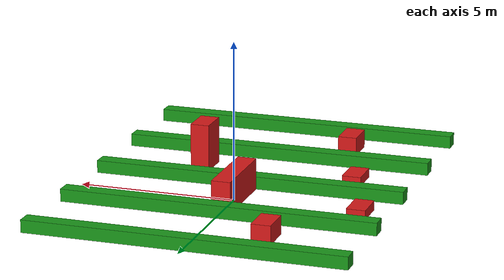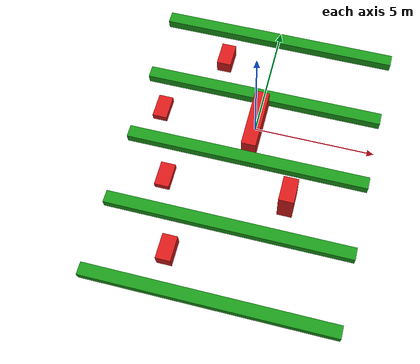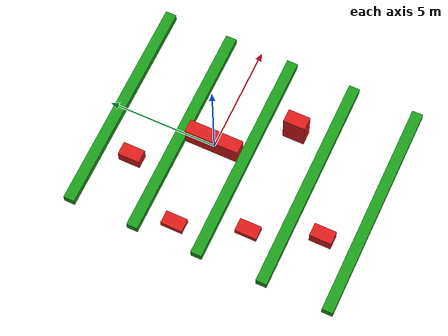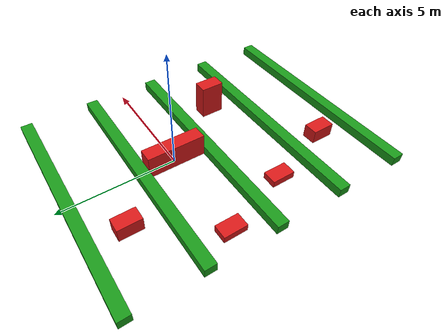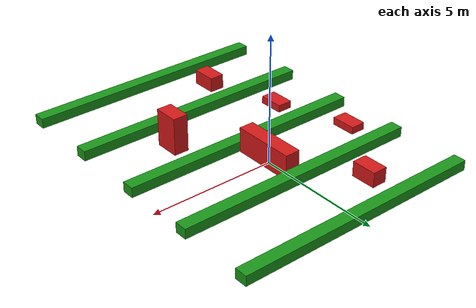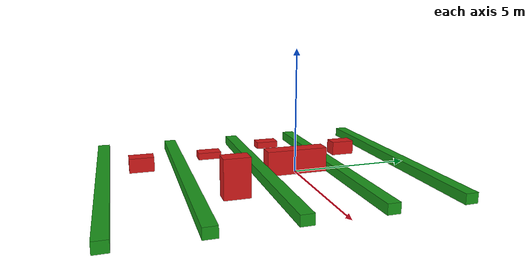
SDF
<sdf version="1.9">
 <world name="demo_field">
  <physics type="ode">
   <max_step_size>0.004</max_step_size>
   <real_time_factor>1.0</real_time_factor>
   <real_time_update_rate>250</real_time_update_rate>
  </physics>
  <plugin filename="gz-sim-physics-system" name="gz::sim::systems::Physics"/>
  <plugin filename="gz-sim-user-commands-system" name="gz::sim::systems::UserCommands"/>
  <plugin filename="gz-sim-scene-broadcaster-system" name="gz::sim::systems::SceneBroadcaster"/>
  <plugin filename="gz-sim-sensors-system" name="gz::sim::systems::Sensors">
   <render_engine>ogre2</render_engine>
  </plugin>
  <plugin filename="gz-sim-imu-system" name="gz::sim::systems::Imu"/>
  <plugin filename="gz-sim-navsat-system" name="gz::sim::systems::NavSat"/>
  <plugin filename="gz-sim-air-pressure-system" name="gz::sim::systems::AirPressure"/>
  <plugin filename="gz-sim-magnetometer-system" name="gz::sim::systems::Magnetometer"/>
  <scene>
   <grid>false</grid>
   <ambient>0.4 0.4 0.4 1</ambient>
   <background>0.7 0.8 1.0 1</background>
   <sky><clouds><speed>12</speed></clouds></sky>
  </scene>
  <light type="directional" name="sun">
   <pose>0 0 10 0 0 0</pose>
   <diffuse>0.8 0.8 0.8 1</diffuse>
   <specular>0.2 0.2 0.2 1</specular>
   <attenuation>
    <range>1000</range>
    <constant>0.9</constant>
    <linear>0.01</linear>
    <quadratic>0.001</quadratic>
   </attenuation>
   <direction>-0.5 0.1 -0.9</direction>
  </light>
  <gravity>0 0 -9.8</gravity>
  <magnetic_field>6e-06 2.3e-05 -4.2e-05</magnetic_field>
  <atmosphere type="adiabatic"/>
  <model name="row_1">
   <static>true</static>
   <pose>0 -7.5 0.2 0 0 0</pose>
   <link name="link">
    <visual name="visual">
     <geometry><box><size>10 0.5 0.4</size></box></geometry>
     <material>
      <ambient>0.05 0.30 0.05 1</ambient>
      <diffuse>0.10 0.60 0.10 1</diffuse>
      <specular>0.05 0.10 0.05 1</specular>
     </material>
    </visual>
    <collision name="collision"><geometry><box><size>10 0.5 0.4</size></box></geometry></collision>
   </link>
  </model>
  <model name="row_2">
   <static>true</static>
   <pose>0 -4.5 0.2 0 0 0</pose>
   <link name="link">
    <visual name="visual">
     <geometry><box><size>10 0.5 0.4</size></box></geometry>
     <material>
      <ambient>0.05 0.30 0.05 1</ambient>
      <diffuse>0.10 0.60 0.10 1</diffuse>
      <specular>0.05 0.10 0.05 1</specular>
     </material>
    </visual>
    <collision name="collision"><geometry><box><size>10 0.5 0.4</size></box></geometry></collision>
   </link>
  </model>
  <model name="row_3">
   <static>true</static>
   <pose>0 -1.5 0.2 0 0 0</pose>
   <link name="link">
    <visual name="visual">
     <geometry><box><size>10 0.5 0.4</size></box></geometry>
     <material>
      <ambient>0.05 0.30 0.05 1</ambient>
      <diffuse>0.10 0.60 0.10 1</diffuse>
      <specular>0.05 0.10 0.05 1</specular>
     </material>
    </visual>
    <collision name="collision"><geometry><box><size>10 0.5 0.4</size></box></geometry></collision>
   </link>
  </model>
  <model name="row_4">
   <static>true</static>
   <pose>0 1.5 0.2 0 0 0</pose>
   <link name="link">
    <visual name="visual">
     <geometry><box><size>10 0.5 0.4</size></box></geometry>
     <material>
      <ambient>0.05 0.30 0.05 1</ambient>
      <diffuse>0.10 0.60 0.10 1</diffuse>
      <specular>0.05 0.10 0.05 1</specular>
     </material>
    </visual>
    <collision name="collision"><geometry><box><size>10 0.5 0.4</size></box></geometry></collision>
   </link>
  </model>
  <model name="row_5">
   <static>true</static>
   <pose>0 4.5 0.2 0 0 0</pose>
   <link name="link">
    <visual name="visual">
     <geometry><box><size>10 0.5 0.4</size></box></geometry>
     <material>
      <ambient>0.05 0.30 0.05 1</ambient>
      <diffuse>0.10 0.60 0.10 1</diffuse>
      <specular>0.05 0.10 0.05 1</specular>
     </material>
    </visual>
    <collision name="collision"><geometry><box><size>10 0.5 0.4</size></box></geometry></collision>
   </link>
  </model>
  <model name="obs_south_med">
   <static>true</static>
   <pose>-2 -6 0.30 0 0 0</pose>
   <link name="link">
    <visual name="visual">
     <geometry><box><size>0.6 1.0 0.6</size></box></geometry>
     <material>
      <ambient>0.40 0.05 0.05 1</ambient>
      <diffuse>0.85 0.10 0.10 1</diffuse>
      <specular>0.20 0.05 0.05 1</specular>
     </material>
    </visual>
    <collision name="collision"><geometry><box><size>0.6 1.0 0.6</size></box></geometry></collision>
   </link>
  </model>
  <model name="obs_c2_low">
   <static>true</static>
   <pose>-3 -3 0.15 0 0 0</pose>
   <link name="link">
    <visual name="visual">
     <geometry><box><size>0.6 1.0 0.3</size></box></geometry>
     <material>
      <ambient>0.40 0.05 0.05 1</ambient>
      <diffuse>0.85 0.10 0.10 1</diffuse>
      <specular>0.20 0.05 0.05 1</specular>
     </material>
    </visual>
    <collision name="collision"><geometry><box><size>0.6 1.0 0.3</size></box></geometry></collision>
   </link>
  </model>
  <model name="obs_c2_tall">
   <static>true</static>
   <pose>2 -3 0.75 0 0 0</pose>
   <link name="link">
    <visual name="visual">
     <geometry><box><size>0.6 1.0 1.5</size></box></geometry>
     <material>
      <ambient>0.40 0.05 0.05 1</ambient>
      <diffuse>0.85 0.10 0.10 1</diffuse>
      <specular>0.20 0.05 0.05 1</specular>
     </material>
    </visual>
    <collision name="collision"><geometry><box><size>0.6 1.0 1.5</size></box></geometry></collision>
   </link>
  </model>
  <model name="obs_central_low">
   <static>true</static>
   <pose>-4 0 0.15 0 0 0</pose>
   <link name="link">
    <visual name="visual">
     <geometry><box><size>0.6 1.0 0.3</size></box></geometry>
     <material>
      <ambient>0.40 0.05 0.05 1</ambient>
      <diffuse>0.85 0.10 0.10 1</diffuse>
      <specular>0.20 0.05 0.05 1</specular>
     </material>
    </visual>
    <collision name="collision"><geometry><box><size>0.6 1.0 0.3</size></box></geometry></collision>
   </link>
  </model>
  <model name="obs_full_block">
   <static>true</static>
   <pose>0 0 0.50 0 0 0</pose>
   <link name="link">
    <visual name="visual">
     <geometry><box><size>0.6 2.5 1.0</size></box></geometry>
     <material>
      <ambient>0.40 0.05 0.05 1</ambient>
      <diffuse>0.85 0.10 0.10 1</diffuse>
      <specular>0.20 0.05 0.05 1</specular>
     </material>
    </visual>
    <collision name="collision"><geometry><box><size>0.6 2.5 1.0</size></box></geometry></collision>
   </link>
  </model>
  <model name="obs_north_med">
   <static>true</static>
   <pose>-2 3 0.30 0 0 0</pose>
   <link name="link">
    <visual name="visual">
     <geometry><box><size>0.6 1.0 0.6</size></box></geometry>
     <material>
      <ambient>0.40 0.05 0.05 1</ambient>
      <diffuse>0.85 0.10 0.10 1</diffuse>
      <specular>0.20 0.05 0.05 1</specular>
     </material>
    </visual>
    <collision name="collision"><geometry><box><size>0.6 1.0 0.6</size></box></geometry></collision>
   </link>
  </model>
  <spherical_coordinates>
   <surface_model>EARTH_WGS84</surface_model>
   <world_frame_orientation>ENU</world_frame_orientation>
   <latitude_deg>47.397971057728974</latitude_deg>
   <longitude_deg>8.546163739800146</longitude_deg>
   <elevation>0</elevation>
  </spherical_coordinates>
 </world>
</sdf>
